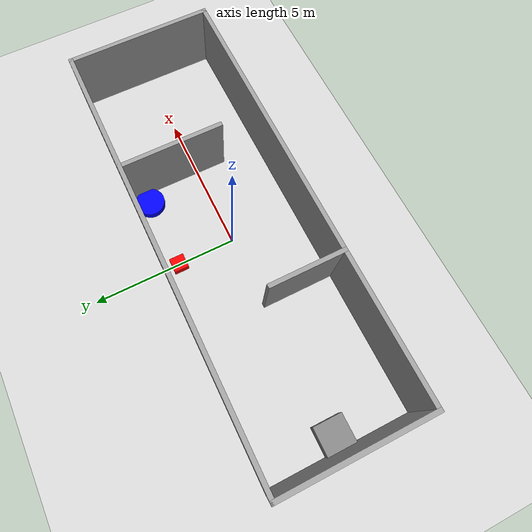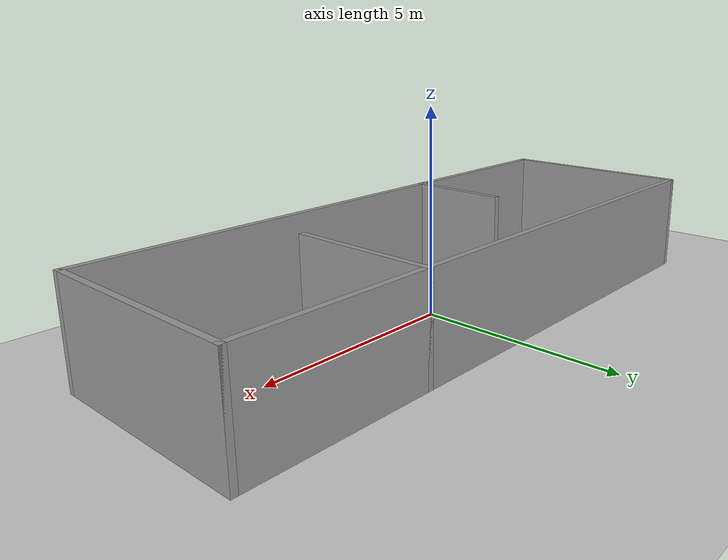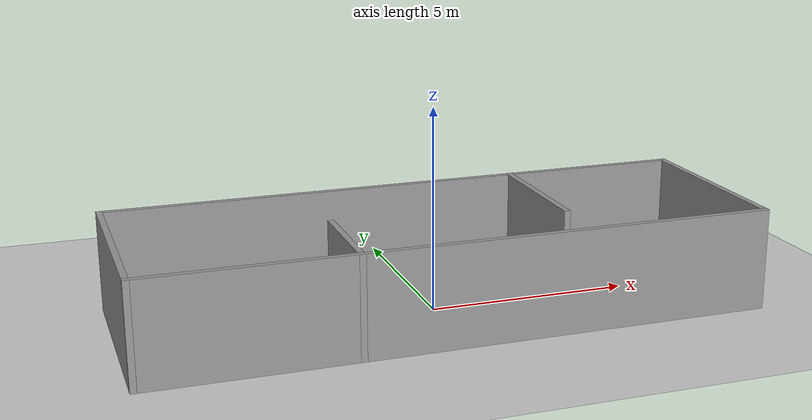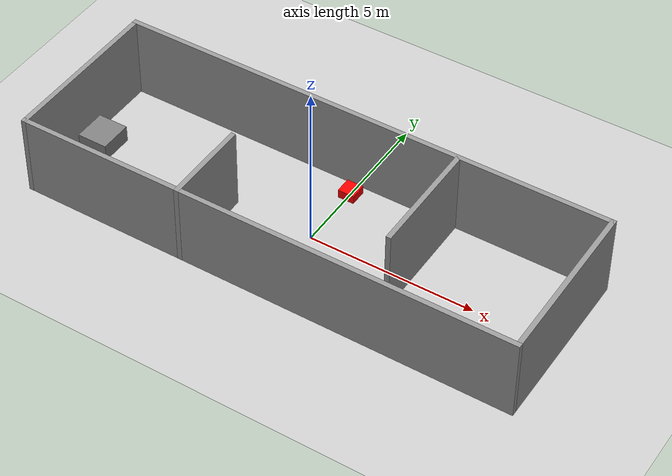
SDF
<?xml version='1.0'?>
<sdf version='1.7'>
  <world name="closed_env">

    <include>
      <uri>model://sun</uri>
    </include>

    <include>
      <uri>model://ground_plane</uri>
    </include>

    <model name='grid2'>
      <pose>0 0 0 0 -0 0</pose>
      <link name='Wall_0'>
        <collision name='Wall_0_Collision'>
          <geometry>
            <box>
              <size>5.15 0.15 2.5</size>
            </box>
          </geometry>
          <pose>0 0 1.25 0 -0 0</pose>
        </collision>
        <visual name='Wall_0_Visual'>
          <pose>0 0 1.25 0 -0 0</pose>
          <geometry>
            <box>
              <size>5.15 0.15 2.5</size>
            </box>
          </geometry>
          <material>
            <script>
              <uri>file://media/materials/scripts/gazebo.material</uri>
              <name>Gazebo/Grey</name>
            </script>
            <ambient>1 1 1 1</ambient>
          </material>
          <meta>
            <layer>0</layer>
          </meta>
        </visual>
        <pose>-7.5 0 0 0 -0 1.5708</pose>
      </link>
      <link name='Wall_1'>
        <collision name='Wall_1_Collision'>
          <geometry>
            <box>
              <size>15.15 0.15 2.5</size>
            </box>
          </geometry>
          <pose>0 0 1.25 0 -0 0</pose>
        </collision>
        <visual name='Wall_1_Visual'>
          <pose>0 0 1.25 0 -0 0</pose>
          <geometry>
            <box>
              <size>15.15 0.15 2.5</size>
            </box>
          </geometry>
          <material>
            <script>
              <uri>file://media/materials/scripts/gazebo.material</uri>
              <name>Gazebo/Grey</name>
            </script>
            <ambient>1 1 1 1</ambient>
          </material>
          <meta>
            <layer>0</layer>
          </meta>
        </visual>
        <pose>0 2.5 0 0 -0 0</pose>
      </link>
      <link name='Wall_2'>
        <collision name='Wall_2_Collision'>
          <geometry>
            <box>
              <size>5.15 0.15 2.5</size>
            </box>
          </geometry>
          <pose>0 0 1.25 0 -0 0</pose>
        </collision>
        <visual name='Wall_2_Visual'>
          <pose>0 0 1.25 0 -0 0</pose>
          <geometry>
            <box>
              <size>5.15 0.15 2.5</size>
            </box>
          </geometry>
          <material>
            <script>
              <uri>file://media/materials/scripts/gazebo.material</uri>
              <name>Gazebo/Grey</name>
            </script>
            <ambient>1 1 1 1</ambient>
          </material>
          <meta>
            <layer>0</layer>
          </meta>
        </visual>
        <pose>7.5 0 0 0 -0 -1.5708</pose>
      </link>
      <link name='Wall_3'>
        <collision name='Wall_3_Collision'>
          <geometry>
            <box>
              <size>15.15 0.15 2.5</size>
            </box>
          </geometry>
          <pose>0 0 1.25 0 -0 0</pose>
        </collision>
        <visual name='Wall_3_Visual'>
          <pose>0 0 1.25 0 -0 0</pose>
          <geometry>
            <box>
              <size>15.15 0.15 2.5</size>
            </box>
          </geometry>
          <material>
            <script>
              <uri>file://media/materials/scripts/gazebo.material</uri>
              <name>Gazebo/Grey</name>
            </script>
            <ambient>1 1 1 1</ambient>
          </material>
          <meta>
            <layer>0</layer>
          </meta>
        </visual>
        <pose>0 -2.5 0 0 -0 3.14159</pose>
      </link>
      <link name='Wall_7'>
        <collision name='Wall_7_Collision'>
          <geometry>
            <box>
              <size>2.65 0.15 2.5</size>
            </box>
          </geometry>
          <pose>0 0 1.25 0 -0 0</pose>
        </collision>
        <visual name='Wall_7_Visual'>
          <pose>0 0 1.25 0 -0 0</pose>
          <geometry>
            <box>
              <size>2.65 0.15 2.5</size>
            </box>
          </geometry>
          <material>
            <script>
              <uri>file://media/materials/scripts/gazebo.material</uri>
              <name>Gazebo/Grey</name>
            </script>
            <ambient>1 1 1 1</ambient>
          </material>
          <meta>
            <layer>0</layer>
          </meta>
        </visual>
        <pose>-2.5 -1.25 0 0 -0 1.5708</pose>
      </link>
      <link name='Wall_9'>
        <collision name='Wall_9_Collision'>
          <geometry>
            <box>
              <size>3.65 0.15 2.5</size>
            </box>
          </geometry>
          <pose>0 0 1.25 0 -0 0</pose>
        </collision>
        <visual name='Wall_9_Visual'>
          <pose>0 0 1.25 0 -0 0</pose>
          <geometry>
            <box>
              <size>3.65 0.15 2.5</size>
            </box>
          </geometry>
          <material>
            <script>
              <uri>file://media/materials/scripts/gazebo.material</uri>
              <name>Gazebo/Grey</name>
            </script>
            <ambient>1 1 1 1</ambient>
          </material>
          <meta>
            <layer>0</layer>
          </meta>
        </visual>
        <pose>3 0.75 0 0 -0 -1.5708</pose>
      </link>
      <static>1</static>
    </model>

    <model name="moving_box">
      <static>false</static>
      <link name="link">
        <collision name="collision">
          <geometry><box><size>0.5 0.5 0.5</size></box></geometry>
        </collision>
        <visual name="visual">
          <geometry><box><size>0.5 0.5 0.5</size></box></geometry>
          <material><ambient>1 0 0 1</ambient></material>
        </visual>
        <pose>0 2 0 0 0 0</pose>
      </link>

      <plugin name="box_mover" filename="libgazebo_ros_planar_move.so">
        <ros>
          <namespace>/moving_box</namespace>
        </ros>
        <x_vel>0.5</x_vel>
        <y_vel>0.0</y_vel>
      </plugin>
    </model>

    <model name="box2">
      <static>false</static>
      <link name="link">
        <collision name="collision">
          <geometry><box><size>1.0 1.0 1.0</size></box></geometry>
        </collision>
        <visual name="visual">
          <geometry><box><size>1.0 1.0 1.0</size></box></geometry>
          <material><ambient>0.5 0.5 0.5 1</ambient></material>
        </visual>
        <pose>-7 0 0 0 0 0</pose>
      </link>
    </model>

    <model name="cylinder">
      <static>false</static>
      <link name="link">
        <collision name="collision">
          <geometry>
              <cylinder>
                    <radius>0.2</radius>
                    <length>0.5</length>
              </cylinder>
          </geometry>
        </collision>
        <visual name="visual">
          <geometry><cylinder><radius>0.5</radius><length>0.5</length></cylinder></geometry>
          <material><ambient>0 0 1 1</ambient></material>
        </visual>
        <pose>2.5 2 0 0 0 0</pose>
      </link>
    </model>
  </world>
</sdf>
